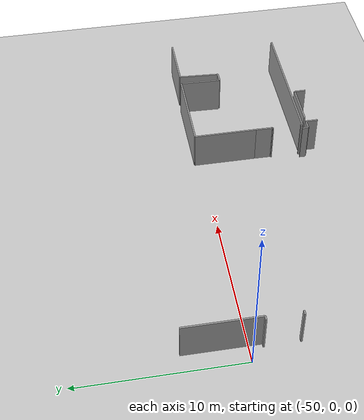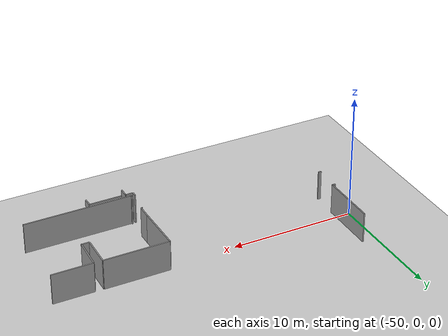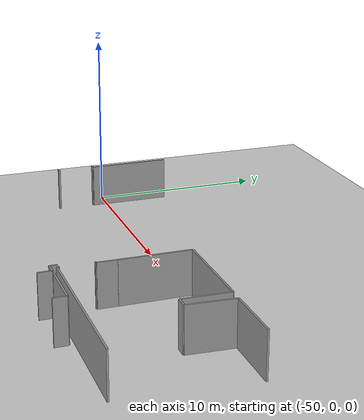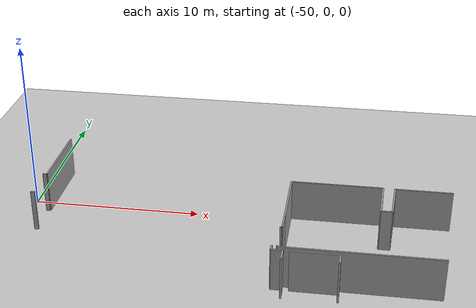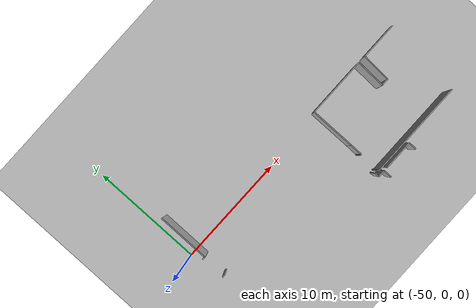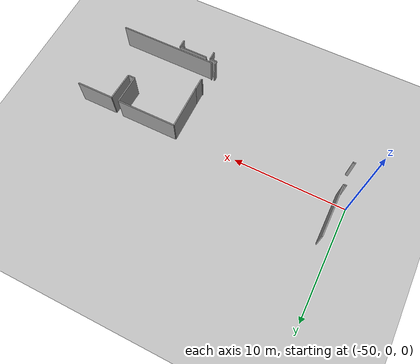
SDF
<sdf version="1.6">
 <world name="default">
  <model name="ground_plane">
   <static>1</static>
   <link name="link">
    <collision name="collision">
     <geometry><plane><normal>0 0 1</normal><size>100 100</size></plane></geometry>
     <surface><friction><ode><mu>100</mu><mu2>50</mu2></ode></friction></surface>
    </collision>
    <visual name="visual">
     <cast_shadows>0</cast_shadows>
     <geometry><plane><normal>0 0 1</normal><size>100 100</size></plane></geometry>
     <material>
      <script><uri>file://media/materials/scripts/gazebo.material</uri><name>Gazebo/Grey</name></script>
     </material>
    </visual>
   </link>
  </model>
  <model name="0510032261_A_40_1_103">
   <static>1</static>
   <link name="Wall_4">
    <collision name="Wall_4_Collision">
     <geometry><box><size>0.253494282084 0.1 2.5</size></box></geometry>
     <pose>0.126747141042 0 1.25 0 0 0</pose>
    </collision>
    <visual name="Wall_4_Visual">
     <pose>0.126747141042 0 1.25 0 0 0</pose>
     <geometry><box><size>0.253494282084 0.1 2.5</size></box></geometry>
     <material>
      <script><uri>file://media/materials/scripts/gazebo.material</uri><name>Gazebo/Grey</name></script>
      <ambient>1 1 1 1</ambient>
     </material>
    </visual>
    <pose>0.265692503177 -19.4828462516 0 0 0 3.14159265359</pose>
   </link>
   <link name="Wall_5">
    <collision name="Wall_5_Collision">
     <geometry><box><size>0.249301143583 0.1 2.5</size></box></geometry>
     <pose>0.124650571792 0 1.25 0 0 0</pose>
    </collision>
    <visual name="Wall_5_Visual">
     <pose>0.124650571792 0 1.25 0 0 0</pose>
     <geometry><box><size>0.249301143583 0.1 2.5</size></box></geometry>
     <material>
      <script><uri>file://media/materials/scripts/gazebo.material</uri><name>Gazebo/Grey</name></script>
      <ambient>1 1 1 1</ambient>
     </material>
    </visual>
    <pose>0.0121982210928 -17.3575603558 0 0 0 0.0</pose>
   </link>
   <link name="Wall_6">
    <collision name="Wall_6_Collision">
     <geometry><box><size>4.6331639136 0.1 2.5</size></box></geometry>
     <pose>2.3165819568 0 1.25 0 0 0</pose>
    </collision>
    <visual name="Wall_6_Visual">
     <pose>2.3165819568 0 1.25 0 0 0</pose>
     <geometry><box><size>4.6331639136 0.1 2.5</size></box></geometry>
     <material>
      <script><uri>file://media/materials/scripts/gazebo.material</uri><name>Gazebo/Grey</name></script>
      <ambient>1 1 1 1</ambient>
     </material>
    </visual>
    <pose>0.261499364676 -17.3575603558 0 0 0 1.57079632679</pose>
   </link>
   <link name="Wall_19">
    <collision name="Wall_19_Collision">
     <geometry><box><size>0.390470139771 0.1 2.5</size></box></geometry>
     <pose>0.195235069886 0 1.25 0 0 0</pose>
    </collision>
    <visual name="Wall_19_Visual">
     <pose>0.195235069886 0 1.25 0 0 0</pose>
     <geometry><box><size>0.390470139771 0.1 2.5</size></box></geometry>
     <material>
      <script><uri>file://media/materials/scripts/gazebo.material</uri><name>Gazebo/Grey</name></script>
      <ambient>1 1 1 1</ambient>
     </material>
    </visual>
    <pose>14.3021601017 -22.9911054638 0 0 0 -1.57079632679</pose>
   </link>
   <link name="Wall_20">
    <collision name="Wall_20_Collision">
     <geometry><box><size>0.613977128335 0.1 2.5</size></box></geometry>
     <pose>0.306988564168 0 1.25 0 0 0</pose>
    </collision>
    <visual name="Wall_20_Visual">
     <pose>0.306988564168 0 1.25 0 0 0</pose>
     <geometry><box><size>0.613977128335 0.1 2.5</size></box></geometry>
     <material>
      <script><uri>file://media/materials/scripts/gazebo.material</uri><name>Gazebo/Grey</name></script>
      <ambient>1 1 1 1</ambient>
     </material>
    </visual>
    <pose>14.3021601017 -23.3815756036 0 0 0 0.0</pose>
   </link>
   <link name="Wall_21">
    <collision name="Wall_21_Collision">
     <geometry><box><size>0.757052096569 0.1 2.5</size></box></geometry>
     <pose>0.378526048285 0 1.25 0 0 0</pose>
    </collision>
    <visual name="Wall_21_Visual">
     <pose>0.378526048285 0 1.25 0 0 0</pose>
     <geometry><box><size>0.757052096569 0.1 2.5</size></box></geometry>
     <material>
      <script><uri>file://media/materials/scripts/gazebo.material</uri><name>Gazebo/Grey</name></script>
      <ambient>1 1 1 1</ambient>
     </material>
    </visual>
    <pose>14.91613723 -23.3815756036 0 0 0 -1.57079632679</pose>
   </link>
   <link name="Wall_62">
    <collision name="Wall_62_Collision">
     <geometry><box><size>3.93494282084 0.1 2.5</size></box></geometry>
     <pose>1.96747141042 0 1.25 0 0 0</pose>
    </collision>
    <visual name="Wall_62_Visual">
     <pose>1.96747141042 0 1.25 0 0 0</pose>
     <geometry><box><size>3.93494282084 0.1 2.5</size></box></geometry>
     <material>
      <script><uri>file://media/materials/scripts/gazebo.material</uri><name>Gazebo/Grey</name></script>
      <ambient>1 1 1 1</ambient>
     </material>
    </visual>
    <pose>14.673570521 -20.0603557814 0 0 0 1.57079632679</pose>
   </link>
   <link name="Wall_63">
    <collision name="Wall_63_Collision">
     <geometry><box><size>5.29822109276 0.1 2.5</size></box></geometry>
     <pose>2.64911054638 0 1.25 0 0 0</pose>
    </collision>
    <visual name="Wall_63_Visual">
     <pose>2.64911054638 0 1.25 0 0 0</pose>
     <geometry><box><size>5.29822109276 0.1 2.5</size></box></geometry>
     <material>
      <script><uri>file://media/materials/scripts/gazebo.material</uri><name>Gazebo/Grey</name></script>
      <ambient>1 1 1 1</ambient>
     </material>
    </visual>
    <pose>14.673570521 -16.1254129606 0 0 0 0.0</pose>
   </link>
   <link name="Wall_64">
    <collision name="Wall_64_Collision">
     <geometry><box><size>2.58875288688 0.1 2.5</size></box></geometry>
     <pose>1.29437644344 0 1.25 0 0 0</pose>
    </collision>
    <visual name="Wall_64_Visual">
     <pose>1.29437644344 0 1.25 0 0 0</pose>
     <geometry><box><size>2.58875288688 0.1 2.5</size></box></geometry>
     <material>
      <script><uri>file://media/materials/scripts/gazebo.material</uri><name>Gazebo/Grey</name></script>
      <ambient>1 1 1 1</ambient>
     </material>
    </visual>
    <pose>19.9717916137 -16.1254129606 0 0 0 -1.60437568511</pose>
   </link>
   <link name="Wall_65">
    <collision name="Wall_65_Collision">
     <geometry><box><size>0.625794155019 0.1 2.5</size></box></geometry>
     <pose>0.31289707751 0 1.25 0 0 0</pose>
    </collision>
    <visual name="Wall_65_Visual">
     <pose>0.31289707751 0 1.25 0 0 0</pose>
     <geometry><box><size>0.625794155019 0.1 2.5</size></box></geometry>
     <material>
      <script><uri>file://media/materials/scripts/gazebo.material</uri><name>Gazebo/Grey</name></script>
      <ambient>1 1 1 1</ambient>
     </material>
    </visual>
    <pose>19.8848792884 -18.7127064803 0 0 0 0.0</pose>
   </link>
   <link name="Wall_66">
    <collision name="Wall_66_Collision">
     <geometry><box><size>2.56463150476 0.1 2.5</size></box></geometry>
     <pose>1.28231575238 0 1.25 0 0 0</pose>
    </collision>
    <visual name="Wall_66_Visual">
     <pose>1.28231575238 0 1.25 0 0 0</pose>
     <geometry><box><size>2.56463150476 0.1 2.5</size></box></geometry>
     <material>
      <script><uri>file://media/materials/scripts/gazebo.material</uri><name>Gazebo/Grey</name></script>
      <ambient>1 1 1 1</ambient>
     </material>
    </visual>
    <pose>20.5106734435 -18.7127064803 0 0 0 1.5130442423</pose>
   </link>
   <link name="Wall_67">
    <collision name="Wall_67_Collision">
     <geometry><box><size>3.2874205845 0.1 2.5</size></box></geometry>
     <pose>1.64371029225 0 1.25 0 0 0</pose>
    </collision>
    <visual name="Wall_67_Visual">
     <pose>1.64371029225 0 1.25 0 0 0</pose>
     <geometry><box><size>3.2874205845 0.1 2.5</size></box></geometry>
     <material>
      <script><uri>file://media/materials/scripts/gazebo.material</uri><name>Gazebo/Grey</name></script>
      <ambient>1 1 1 1</ambient>
     </material>
    </visual>
    <pose>20.658703939 -16.1523506989 0 0 0 0.0</pose>
   </link>
   <link name="Wall_72">
    <collision name="Wall_72_Collision">
     <geometry><box><size>8.73443456163 0.1 2.5</size></box></geometry>
     <pose>4.36721728081 0 1.25 0 0 0</pose>
    </collision>
    <visual name="Wall_72_Visual">
     <pose>4.36721728081 0 1.25 0 0 0</pose>
     <geometry><box><size>8.73443456163 0.1 2.5</size></box></geometry>
     <material>
      <script><uri>file://media/materials/scripts/gazebo.material</uri><name>Gazebo/Grey</name></script>
      <ambient>1 1 1 1</ambient>
     </material>
    </visual>
    <pose>23.325158831 -23.0736975858 0 0 0 3.14159265359</pose>
   </link>
   <link name="Wall_73">
    <collision name="Wall_73_Collision">
     <geometry><box><size>0.126302414231 0.1 2.5</size></box></geometry>
     <pose>0.0631512071156 0 1.25 0 0 0</pose>
    </collision>
    <visual name="Wall_73_Visual">
     <pose>0.0631512071156 0 1.25 0 0 0</pose>
     <geometry><box><size>0.126302414231 0.1 2.5</size></box></geometry>
     <material>
      <script><uri>file://media/materials/scripts/gazebo.material</uri><name>Gazebo/Grey</name></script>
      <ambient>1 1 1 1</ambient>
     </material>
    </visual>
    <pose>14.5907242694 -23.0736975858 0 0 0 1.57079632679</pose>
   </link>
   <link name="Wall_74">
    <collision name="Wall_74_Collision">
     <geometry><box><size>0.0526048284625 0.1 2.5</size></box></geometry>
     <pose>0.0263024142313 0 1.25 0 0 0</pose>
    </collision>
    <visual name="Wall_74_Visual">
     <pose>0.0263024142313 0 1.25 0 0 0</pose>
     <geometry><box><size>0.0526048284625 0.1 2.5</size></box></geometry>
     <material>
      <script><uri>file://media/materials/scripts/gazebo.material</uri><name>Gazebo/Grey</name></script>
      <ambient>1 1 1 1</ambient>
     </material>
    </visual>
    <pose>14.5907242694 -21.1871664549 0 0 0 1.57079632679</pose>
   </link>
   <link name="Wall_75">
    <collision name="Wall_75_Collision">
     <geometry><box><size>0.0682337992376 0.1 2.5</size></box></geometry>
     <pose>0.0341168996188 0 1.25 0 0 0</pose>
    </collision>
    <visual name="Wall_75_Visual">
     <pose>0.0341168996188 0 1.25 0 0 0</pose>
     <geometry><box><size>0.0682337992376 0.1 2.5</size></box></geometry>
     <material>
      <script><uri>file://media/materials/scripts/gazebo.material</uri><name>Gazebo/Grey</name></script>
      <ambient>1 1 1 1</ambient>
     </material>
    </visual>
    <pose>14.5907242694 -21.1345616264 0 0 0 0.0</pose>
   </link>
   <link name="Wall_76">
    <collision name="Wall_76_Collision">
     <geometry><box><size>1.07430522718 0.1 2.5</size></box></geometry>
     <pose>0.537152613592 0 1.25 0 0 0</pose>
    </collision>
    <visual name="Wall_76_Visual">
     <pose>0.537152613592 0 1.25 0 0 0</pose>
     <geometry><box><size>1.07430522718 0.1 2.5</size></box></geometry>
     <material>
      <script><uri>file://media/materials/scripts/gazebo.material</uri><name>Gazebo/Grey</name></script>
      <ambient>1 1 1 1</ambient>
     </material>
    </visual>
    <pose>14.6589580686 -21.1345616264 0 0 0 1.55719413759</pose>
   </link>
   <link name="Wall_253">
    <collision name="Wall_253_Collision">
     <geometry><box><size>2.62655654384 0.1 2.5</size></box></geometry>
     <pose>1.31327827192 0 1.25 0 0 0</pose>
    </collision>
    <visual name="Wall_253_Visual">
     <pose>1.31327827192 0 1.25 0 0 0</pose>
     <geometry><box><size>2.62655654384 0.1 2.5</size></box></geometry>
     <material>
      <script><uri>file://media/materials/scripts/gazebo.material</uri><name>Gazebo/Grey</name></script>
      <ambient>1 1 1 1</ambient>
     </material>
    </visual>
    <pose>15.2656925032 -23.3869123253 0 0 0 0.0</pose>
   </link>
   <link name="Wall_254">
    <collision name="Wall_254_Collision">
     <geometry><box><size>0.713214739517 0.1 2.5</size></box></geometry>
     <pose>0.356607369759 0 1.25 0 0 0</pose>
    </collision>
    <visual name="Wall_254_Visual">
     <pose>0.356607369759 0 1.25 0 0 0</pose>
     <geometry><box><size>0.713214739517 0.1 2.5</size></box></geometry>
     <material>
      <script><uri>file://media/materials/scripts/gazebo.material</uri><name>Gazebo/Grey</name></script>
      <ambient>1 1 1 1</ambient>
     </material>
    </visual>
    <pose>17.892249047 -23.3869123253 0 0 0 -1.57079632679</pose>
   </link>
   <pose>-49.15 16.5314485388 0 0 0 0</pose>
  </model>
 </world>
</sdf>
